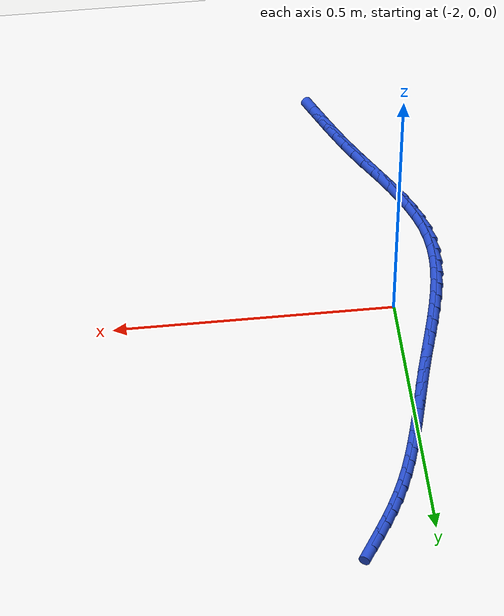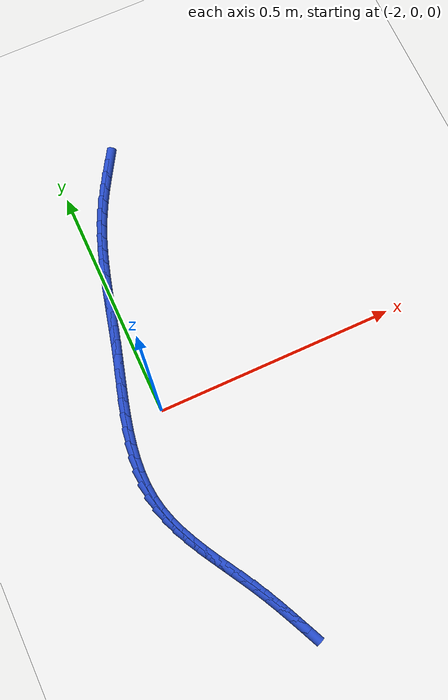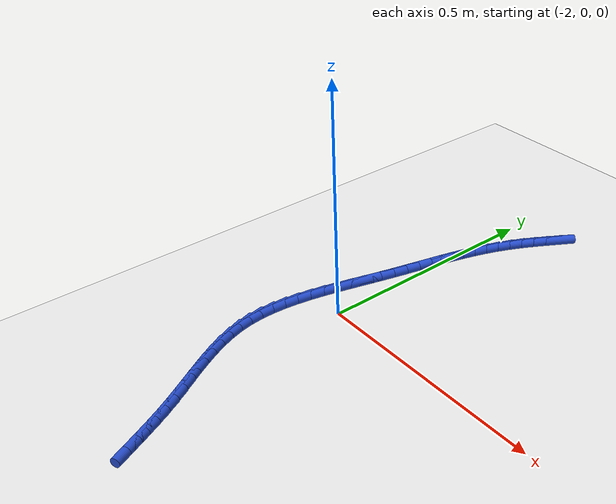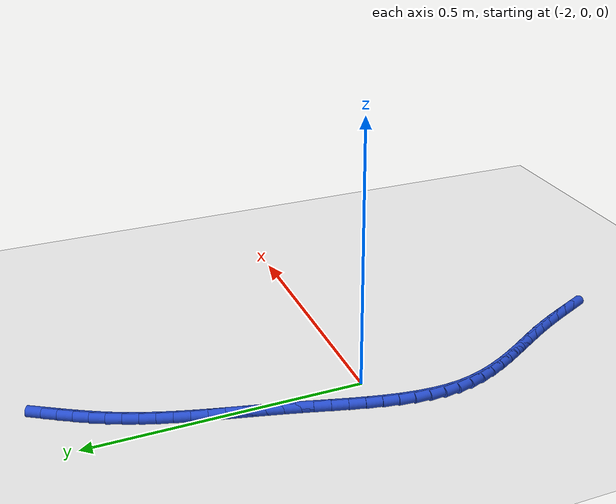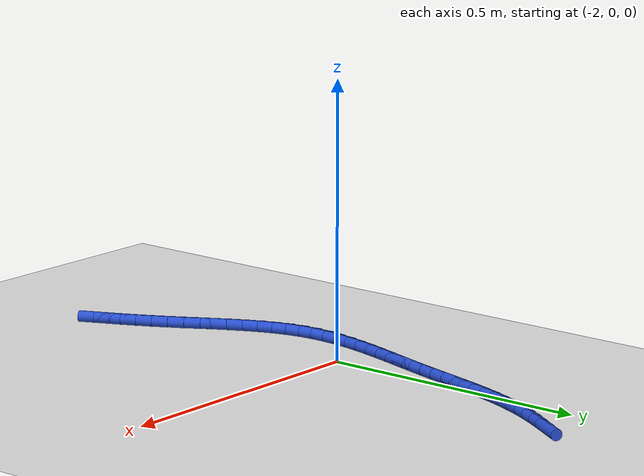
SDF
<sdf version="1.6">
 <world name="default">
  <model name="ground_plane">
   <static>1</static>
   <link name="link">
    <collision name="collision">
     <geometry><plane><normal>0 0 1</normal><size>100 100</size></plane></geometry>
     <surface><friction><ode><mu>100</mu><mu2>50</mu2></ode></friction></surface>
    </collision>
    <visual name="visual">
     <cast_shadows>0</cast_shadows>
     <geometry><plane><normal>0 0 1</normal><size>100 100</size></plane></geometry>
     <material>
      <script><uri>file://media/materials/scripts/gazebo.material</uri><name>Gazebo/WhiteGlow</name></script>
     </material>
    </visual>
   </link>
  </model>
  <model name="line">
   <link name="link_95">
    <pose>-1.890870334132598 0.5298868305742799 0.01 0 1.57 1.0206984046946794</pose>
    <collision name="collision">
     <geometry><cylinder><radius>0.01</radius><length>0.08</length></cylinder></geometry>
    </collision>
    <visual name="visual">
     <material>
      <script><name>Gazebo/Blue</name><uri>file://media/materials/scripts/gazebo.material</uri></script>
     </material>
     <geometry><cylinder><radius>0.01</radius><length>0.08</length></cylinder></geometry>
    </visual>
   </link>
   <link name="link_96">
    <pose>-1.905598941419519 0.5058691402165597 0.01 0 1.57 1.0391182083528512</pose>
    <collision name="collision">
     <geometry><cylinder><radius>0.01</radius><length>0.08</length></cylinder></geometry>
    </collision>
    <visual name="visual">
     <material>
      <script><name>Gazebo/Blue</name><uri>file://media/materials/scripts/gazebo.material</uri></script>
     </material>
     <geometry><cylinder><radius>0.01</radius><length>0.08</length></cylinder></geometry>
    </visual>
   </link>
   <link name="link_97">
    <pose>-1.9197830799709918 0.48175356919534906 0.01 0 1.57 1.0665323175773243</pose>
    <collision name="collision">
     <geometry><cylinder><radius>0.01</radius><length>0.08</length></cylinder></geometry>
    </collision>
    <visual name="visual">
     <material>
      <script><name>Gazebo/Blue</name><uri>file://media/materials/scripts/gazebo.material</uri></script>
     </material>
     <geometry><cylinder><radius>0.01</radius><length>0.08</length></cylinder></geometry>
    </visual>
   </link>
   <link name="link_98">
    <pose>-1.9332307148834256 0.45738537993486783 0.01 0 1.57 1.1029172805901601</pose>
    <collision name="collision">
     <geometry><cylinder><radius>0.01</radius><length>0.08</length></cylinder></geometry>
    </collision>
    <visual name="visual">
     <material>
      <script><name>Gazebo/Blue</name><uri>file://media/materials/scripts/gazebo.material</uri></script>
     </material>
     <geometry><cylinder><radius>0.01</radius><length>0.08</length></cylinder></geometry>
    </visual>
   </link>
   <link name="link_99">
    <pose>-1.945749811253229 0.4326098348593363 0.01 0 1.57 1.147607131172665</pose>
    <collision name="collision">
     <geometry><cylinder><radius>0.01</radius><length>0.08</length></cylinder></geometry>
    </collision>
    <visual name="visual">
     <material>
      <script><name>Gazebo/Blue</name><uri>file://media/materials/scripts/gazebo.material</uri></script>
     </material>
     <geometry><cylinder><radius>0.01</radius><length>0.08</length></cylinder></geometry>
    </visual>
   </link>
   <link name="link_100">
    <pose>-1.9571591643510358 0.40727841507787604 0.01 0 1.57 1.1924706330445114</pose>
    <collision name="collision">
     <geometry><cylinder><radius>0.01</radius><length>0.08</length></cylinder></geometry>
    </collision>
    <visual name="visual">
     <material>
      <script><name>Gazebo/Blue</name><uri>file://media/materials/scripts/gazebo.material</uri></script>
     </material>
     <geometry><cylinder><radius>0.01</radius><length>0.08</length></cylinder></geometry>
    </visual>
   </link>
   <link name="link_101">
    <pose>-1.9674649266876283 0.3813501822071815 0.01 0 1.57 1.230745955502144</pose>
    <collision name="collision">
     <geometry><cylinder><radius>0.01</radius><length>0.08</length></cylinder></geometry>
    </collision>
    <visual name="visual">
     <material>
      <script><name>Gazebo/Blue</name><uri>file://media/materials/scripts/gazebo.material</uri></script>
     </material>
     <geometry><cylinder><radius>0.01</radius><length>0.08</length></cylinder></geometry>
    </visual>
   </link>
   <link name="link_102">
    <pose>-1.9768316268640793 0.35487513739832344 0.01 0 1.57 1.2622013554183291</pose>
    <collision name="collision">
     <geometry><cylinder><radius>0.01</radius><length>0.08</length></cylinder></geometry>
    </collision>
    <visual name="visual">
     <material>
      <script><name>Gazebo/Blue</name><uri>file://media/materials/scripts/gazebo.material</uri></script>
     </material>
     <geometry><cylinder><radius>0.01</radius><length>0.08</length></cylinder></geometry>
    </visual>
   </link>
   <link name="link_103">
    <pose>-1.9854287760674716 0.3279061428027348 0.01 0 1.57 1.2869180923793542</pose>
    <collision name="collision">
     <geometry><cylinder><radius>0.01</radius><length>0.08</length></cylinder></geometry>
    </collision>
    <visual name="visual">
     <material>
      <script><name>Gazebo/Blue</name><uri>file://media/materials/scripts/gazebo.material</uri></script>
     </material>
     <geometry><cylinder><radius>0.01</radius><length>0.08</length></cylinder></geometry>
    </visual>
   </link>
   <link name="link_104">
    <pose>-1.9934258854848914 0.30049606057185085 0.01 0 1.57 1.3050390827137686</pose>
    <collision name="collision">
     <geometry><cylinder><radius>0.01</radius><length>0.08</length></cylinder></geometry>
    </collision>
    <visual name="visual">
     <material>
      <script><name>Gazebo/Blue</name><uri>file://media/materials/scripts/gazebo.material</uri></script>
     </material>
     <geometry><cylinder><radius>0.01</radius><length>0.08</length></cylinder></geometry>
    </visual>
   </link>
   <link name="link_105">
    <pose>-2.0009924663034226 0.27269775285710496 0.01 0 1.57 1.3167342992502744</pose>
    <collision name="collision">
     <geometry><cylinder><radius>0.01</radius><length>0.08</length></cylinder></geometry>
    </collision>
    <visual name="visual">
     <material>
      <script><name>Gazebo/Blue</name><uri>file://media/materials/scripts/gazebo.material</uri></script>
     </material>
     <geometry><cylinder><radius>0.01</radius><length>0.08</length></cylinder></geometry>
    </visual>
   </link>
   <link name="link_106">
    <pose>-2.0082980297101494 0.244564081809932 0.01 0 1.57 1.3221772010551858</pose>
    <collision name="collision">
     <geometry><cylinder><radius>0.01</radius><length>0.08</length></cylinder></geometry>
    </collision>
    <visual name="visual">
     <material>
      <script><name>Gazebo/Blue</name><uri>file://media/materials/scripts/gazebo.material</uri></script>
     </material>
     <geometry><cylinder><radius>0.01</radius><length>0.08</length></cylinder></geometry>
    </visual>
   </link>
   <link name="link_107">
    <pose>-2.015512086892157 0.216147909581766 0.01 0 1.57 1.3215310355403653</pose>
    <collision name="collision">
     <geometry><cylinder><radius>0.01</radius><length>0.08</length></cylinder></geometry>
    </collision>
    <visual name="visual">
     <material>
      <script><name>Gazebo/Blue</name><uri>file://media/materials/scripts/gazebo.material</uri></script>
     </material>
     <geometry><cylinder><radius>0.01</radius><length>0.08</length></cylinder></geometry>
    </visual>
   </link>
   <link name="link_108">
    <pose>-2.022804149036531 0.1875020983240407 0.01 0 1.57 1.3149435031009111</pose>
    <collision name="collision">
     <geometry><cylinder><radius>0.01</radius><length>0.08</length></cylinder></geometry>
    </collision>
    <visual name="visual">
     <material>
      <script><name>Gazebo/Blue</name><uri>file://media/materials/scripts/gazebo.material</uri></script>
     </material>
     <geometry><cylinder><radius>0.01</radius><length>0.08</length></cylinder></geometry>
    </visual>
   </link>
   <link name="link_109">
    <pose>-2.0303437273303544 0.15867951018819104 0.01 0 1.57 1.303023755697601</pose>
    <collision name="collision">
     <geometry><cylinder><radius>0.01</radius><length>0.08</length></cylinder></geometry>
    </collision>
    <visual name="visual">
     <material>
      <script><name>Gazebo/Blue</name><uri>file://media/materials/scripts/gazebo.material</uri></script>
     </material>
     <geometry><cylinder><radius>0.01</radius><length>0.08</length></cylinder></geometry>
    </visual>
   </link>
   <link name="link_110">
    <pose>-2.0382855418193353 0.12973298360494828 0.01 0 1.57 1.2937594567680077</pose>
    <collision name="collision">
     <geometry><cylinder><radius>0.01</radius><length>0.08</length></cylinder></geometry>
    </collision>
    <visual name="visual">
     <material>
      <script><name>Gazebo/Blue</name><uri>file://media/materials/scripts/gazebo.material</uri></script>
     </material>
     <geometry><cylinder><radius>0.01</radius><length>0.08</length></cylinder></geometry>
    </visual>
   </link>
   <link name="link_111">
    <pose>-2.0465367850103364 0.10071496004264045 0.01 0 1.57 1.2935619171088184</pose>
    <collision name="collision">
     <geometry><cylinder><radius>0.01</radius><length>0.08</length></cylinder></geometry>
    </collision>
    <visual name="visual">
     <material>
      <script><name>Gazebo/Blue</name><uri>file://media/materials/scripts/gazebo.material</uri></script>
     </material>
     <geometry><cylinder><radius>0.01</radius><length>0.08</length></cylinder></geometry>
    </visual>
   </link>
   <link name="link_112">
    <pose>-2.0547997402276463 0.07167755235467616 0.01 0 1.57 1.3026067638261756</pose>
    <collision name="collision">
     <geometry><cylinder><radius>0.01</radius><length>0.08</length></cylinder></geometry>
    </collision>
    <visual name="visual">
     <material>
      <script><name>Gazebo/Blue</name><uri>file://media/materials/scripts/gazebo.material</uri></script>
     </material>
     <geometry><cylinder><radius>0.01</radius><length>0.08</length></cylinder></geometry>
    </visual>
   </link>
   <link name="link_113">
    <pose>-2.0627705188392094 0.0426728634964371 0.01 0 1.57 1.3211125643244643</pose>
    <collision name="collision">
     <geometry><cylinder><radius>0.01</radius><length>0.08</length></cylinder></geometry>
    </collision>
    <visual name="visual">
     <material>
      <script><name>Gazebo/Blue</name><uri>file://media/materials/scripts/gazebo.material</uri></script>
     </material>
     <geometry><cylinder><radius>0.01</radius><length>0.08</length></cylinder></geometry>
    </visual>
   </link>
   <link name="link_114">
    <pose>-2.070145232212971 0.013752996423303517 0.01 0 1.57 1.3495282644709725</pose>
    <collision name="collision">
     <geometry><cylinder><radius>0.01</radius><length>0.08</length></cylinder></geometry>
    </collision>
    <visual name="visual">
     <material>
      <script><name>Gazebo/Blue</name><uri>file://media/materials/scripts/gazebo.material</uri></script>
     </material>
     <geometry><cylinder><radius>0.01</radius><length>0.08</length></cylinder></geometry>
    </visual>
   </link>
   <link name="link_115">
    <pose>-2.0766199917168757 -0.015029945909342968 0.01 0 1.57 1.3885056773118472</pose>
    <collision name="collision">
     <geometry><cylinder><radius>0.01</radius><length>0.08</length></cylinder></geometry>
    </collision>
    <visual name="visual">
     <material>
      <script><name>Gazebo/Blue</name><uri>file://media/materials/scripts/gazebo.material</uri></script>
     </material>
     <geometry><cylinder><radius>0.01</radius><length>0.08</length></cylinder></geometry>
    </visual>
   </link>
   <link name="link_116">
    <pose>-2.0818909087188695 -0.0436238605461218 0.01 0 1.57 1.438840379344202</pose>
    <collision name="collision">
     <geometry><cylinder><radius>0.01</radius><length>0.08</length></cylinder></geometry>
    </collision>
    <visual name="visual">
     <material>
      <script><name>Gazebo/Blue</name><uri>file://media/materials/scripts/gazebo.material</uri></script>
     </material>
     <geometry><cylinder><radius>0.01</radius><length>0.08</length></cylinder></geometry>
    </visual>
   </link>
   <link name="link_117">
    <pose>-2.085654094586895 -0.07197664453165271 0.01 0 1.57 1.5013572804788926</pose>
    <collision name="collision">
     <geometry><cylinder><radius>0.01</radius><length>0.08</length></cylinder></geometry>
    </collision>
    <visual name="visual">
     <material>
      <script><name>Gazebo/Blue</name><uri>file://media/materials/scripts/gazebo.material</uri></script>
     </material>
     <geometry><cylinder><radius>0.01</radius><length>0.08</length></cylinder></geometry>
    </visual>
   </link>
   <link name="link_118">
    <pose>-2.087605660688899 -0.1000361949105534 0.01 0 1.57 -1.564880936773794</pose>
    <collision name="collision">
     <geometry><cylinder><radius>0.01</radius><length>0.08</length></cylinder></geometry>
    </collision>
    <visual name="visual">
     <material>
      <script><name>Gazebo/Blue</name><uri>file://media/materials/scripts/gazebo.material</uri></script>
     </material>
     <geometry><cylinder><radius>0.01</radius><length>0.08</length></cylinder></geometry>
    </visual>
   </link>
   <link name="link_119">
    <pose>-2.0874417183928253 -0.12775040872744364 0.01 0 1.57 -1.4765070429590723</pose>
    <collision name="collision">
     <geometry><cylinder><radius>0.01</radius><length>0.08</length></cylinder></geometry>
    </collision>
    <visual name="visual">
     <material>
      <script><name>Gazebo/Blue</name><uri>file://media/materials/scripts/gazebo.material</uri></script>
     </material>
     <geometry><cylinder><radius>0.01</radius><length>0.08</length></cylinder></geometry>
    </visual>
   </link>
   <link name="link_120">
    <pose>-2.0848583790666195 -0.15506718302694256 0.01 0 1.57 -1.3763203606026913</pose>
    <collision name="collision">
     <geometry><cylinder><radius>0.01</radius><length>0.08</length></cylinder></geometry>
    </collision>
    <visual name="visual">
     <material>
      <script><name>Gazebo/Blue</name><uri>file://media/materials/scripts/gazebo.material</uri></script>
     </material>
     <geometry><cylinder><radius>0.01</radius><length>0.08</length></cylinder></geometry>
    </visual>
   </link>
   <link name="link_121">
    <pose>-2.0795659318366075 -0.18193711859816253 0.01 0 1.57 -1.2787787717508468</pose>
    <collision name="collision">
     <geometry><cylinder><radius>0.01</radius><length>0.08</length></cylinder></geometry>
    </collision>
    <visual name="visual">
     <material>
      <script><name>Gazebo/Blue</name><uri>file://media/materials/scripts/gazebo.material</uri></script>
     </material>
     <geometry><cylinder><radius>0.01</radius><length>0.08</length></cylinder></geometry>
    </visual>
   </link>
   <link name="link_122">
    <pose>-2.0716180160355773 -0.20837629422786655 0.01 0 1.57 -1.1982518755874627</pose>
    <collision name="collision">
     <geometry><cylinder><radius>0.01</radius><length>0.08</length></cylinder></geometry>
    </collision>
    <visual name="visual">
     <material>
      <script><name>Gazebo/Blue</name><uri>file://media/materials/scripts/gazebo.material</uri></script>
     </material>
     <geometry><cylinder><radius>0.01</radius><length>0.08</length></cylinder></geometry>
    </visual>
   </link>
   <link name="link_123">
    <pose>-2.061421494011306 -0.23446814947706351 0.01 0 1.57 -1.1351989933965492</pose>
    <collision name="collision">
     <geometry><cylinder><radius>0.01</radius><length>0.08</length></cylinder></geometry>
    </collision>
    <visual name="visual">
     <material>
      <script><name>Gazebo/Blue</name><uri>file://media/materials/scripts/gazebo.material</uri></script>
     </material>
     <geometry><cylinder><radius>0.01</radius><length>0.08</length></cylinder></geometry>
    </visual>
   </link>
   <link name="link_124">
    <pose>-2.04939938092912 -0.2602992043014451 0.01 0 1.57 -1.0887288664973889</pose>
    <collision name="collision">
     <geometry><cylinder><radius>0.01</radius><length>0.08</length></cylinder></geometry>
    </collision>
    <visual name="visual">
     <material>
      <script><name>Gazebo/Blue</name><uri>file://media/materials/scripts/gazebo.material</uri></script>
     </material>
     <geometry><cylinder><radius>0.01</radius><length>0.08</length></cylinder></geometry>
    </visual>
   </link>
   <link name="link_125">
    <pose>-2.03597469195435 -0.2859559786567026 0.01 0 1.57 -1.0577630141275944</pose>
    <collision name="collision">
     <geometry><cylinder><radius>0.01</radius><length>0.08</length></cylinder></geometry>
    </collision>
    <visual name="visual">
     <material>
      <script><name>Gazebo/Blue</name><uri>file://media/materials/scripts/gazebo.material</uri></script>
     </material>
     <geometry><cylinder><radius>0.01</radius><length>0.08</length></cylinder></geometry>
    </visual>
   </link>
   <link name="link_126">
    <pose>-2.021570442252321 -0.31152499249852755 0.01 0 1.57 -1.0413729659942152</pose>
    <collision name="collision">
     <geometry><cylinder><radius>0.01</radius><length>0.08</length></cylinder></geometry>
    </collision>
    <visual name="visual">
     <material>
      <script><name>Gazebo/Blue</name><uri>file://media/materials/scripts/gazebo.material</uri></script>
     </material>
     <geometry><cylinder><radius>0.01</radius><length>0.08</length></cylinder></geometry>
    </visual>
   </link>
   <link name="link_127">
    <pose>-2.0066096469883625 -0.3370927657826096 0.01 0 1.57 -1.0389478919153545</pose>
    <collision name="collision">
     <geometry><cylinder><radius>0.01</radius><length>0.08</length></cylinder></geometry>
    </collision>
    <visual name="visual">
     <material>
      <script><name>Gazebo/Blue</name><uri>file://media/materials/scripts/gazebo.material</uri></script>
     </material>
     <geometry><cylinder><radius>0.01</radius><length>0.08</length></cylinder></geometry>
    </visual>
   </link>
   <link name="link_128">
    <pose>-1.9915153213278018 -0.3627458184646407 0.01 0 1.57 -1.0502565159542068</pose>
    <collision name="collision">
     <geometry><cylinder><radius>0.01</radius><length>0.08</length></cylinder></geometry>
    </collision>
    <visual name="visual">
     <material>
      <script><name>Gazebo/Blue</name><uri>file://media/materials/scripts/gazebo.material</uri></script>
     </material>
     <geometry><cylinder><radius>0.01</radius><length>0.08</length></cylinder></geometry>
    </visual>
   </link>
   <link name="link_129">
    <pose>-1.9767104804359665 -0.3885706705003116 0.01 0 1.57 -1.0749154160025176</pose>
    <collision name="collision">
     <geometry><cylinder><radius>0.01</radius><length>0.08</length></cylinder></geometry>
    </collision>
    <visual name="visual">
     <material>
      <script><name>Gazebo/Blue</name><uri>file://media/materials/scripts/gazebo.material</uri></script>
     </material>
     <geometry><cylinder><radius>0.01</radius><length>0.08</length></cylinder></geometry>
    </visual>
   </link>
   <link name="link_130">
    <pose>-1.9626029357871484 -0.4146490992853245 0.01 0 1.57 -1.1024460853640705</pose>
    <collision name="collision">
     <geometry><cylinder><radius>0.01</radius><length>0.08</length></cylinder></geometry>
    </collision>
    <visual name="visual">
     <material>
      <script><name>Gazebo/Blue</name><uri>file://media/materials/scripts/gazebo.material</uri></script>
     </material>
     <geometry><cylinder><radius>0.01</radius><length>0.08</length></cylinder></geometry>
    </visual>
   </link>
   <link name="link_131">
    <pose>-1.9492894884490302 -0.4409658672532266 0.01 0 1.57 -1.1227263622210102</pose>
    <collision name="collision">
     <geometry><cylinder><radius>0.01</radius><length>0.08</length></cylinder></geometry>
    </collision>
    <visual name="visual">
     <material>
      <script><name>Gazebo/Blue</name><uri>file://media/materials/scripts/gazebo.material</uri></script>
     </material>
     <geometry><cylinder><radius>0.01</radius><length>0.08</length></cylinder></geometry>
    </visual>
   </link>
   <link name="link_132">
    <pose>-1.9365760087039816 -0.4674149854076193 0.01 0 1.57 -1.1352483424496953</pose>
    <collision name="collision">
     <geometry><cylinder><radius>0.01</radius><length>0.08</length></cylinder></geometry>
    </collision>
    <visual name="visual">
     <material>
      <script><name>Gazebo/Blue</name><uri>file://media/materials/scripts/gazebo.material</uri></script>
     </material>
     <geometry><cylinder><radius>0.01</radius><length>0.08</length></cylinder></geometry>
    </visual>
   </link>
   <link name="link_133">
    <pose>-1.9242571846760832 -0.49388697664804154 0.01 0 1.57 -1.1399015388304137</pose>
    <collision name="collision">
     <geometry><cylinder><radius>0.01</radius><length>0.08</length></cylinder></geometry>
    </collision>
    <visual name="visual">
     <material>
      <script><name>Gazebo/Blue</name><uri>file://media/materials/scripts/gazebo.material</uri></script>
     </material>
     <geometry><cylinder><radius>0.01</radius><length>0.08</length></cylinder></geometry>
    </visual>
   </link>
  </model>
 </world>
</sdf>
